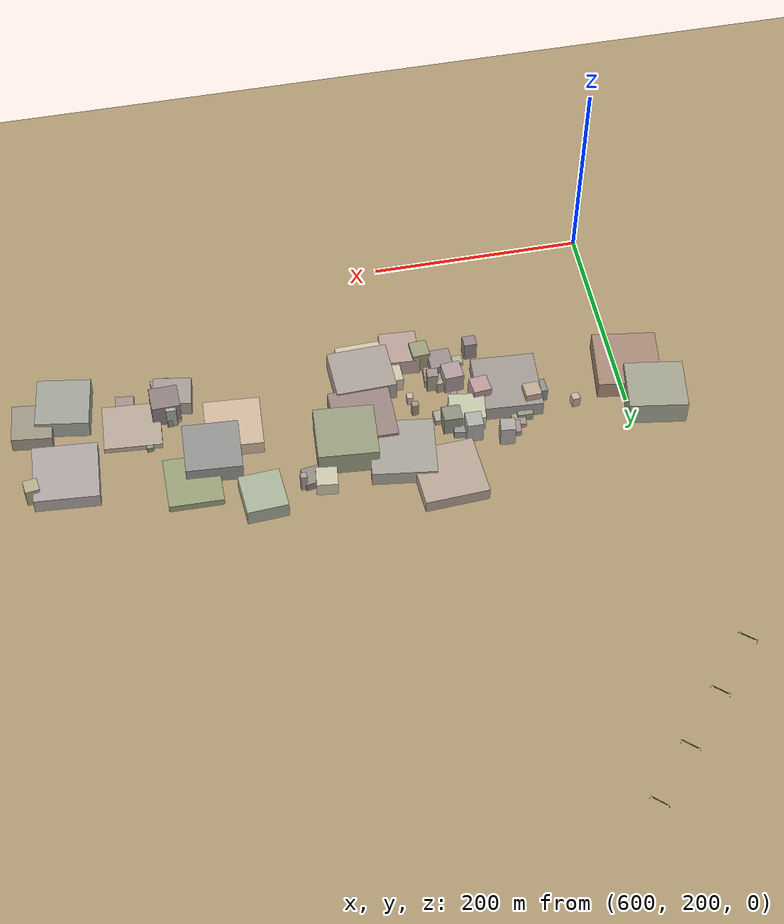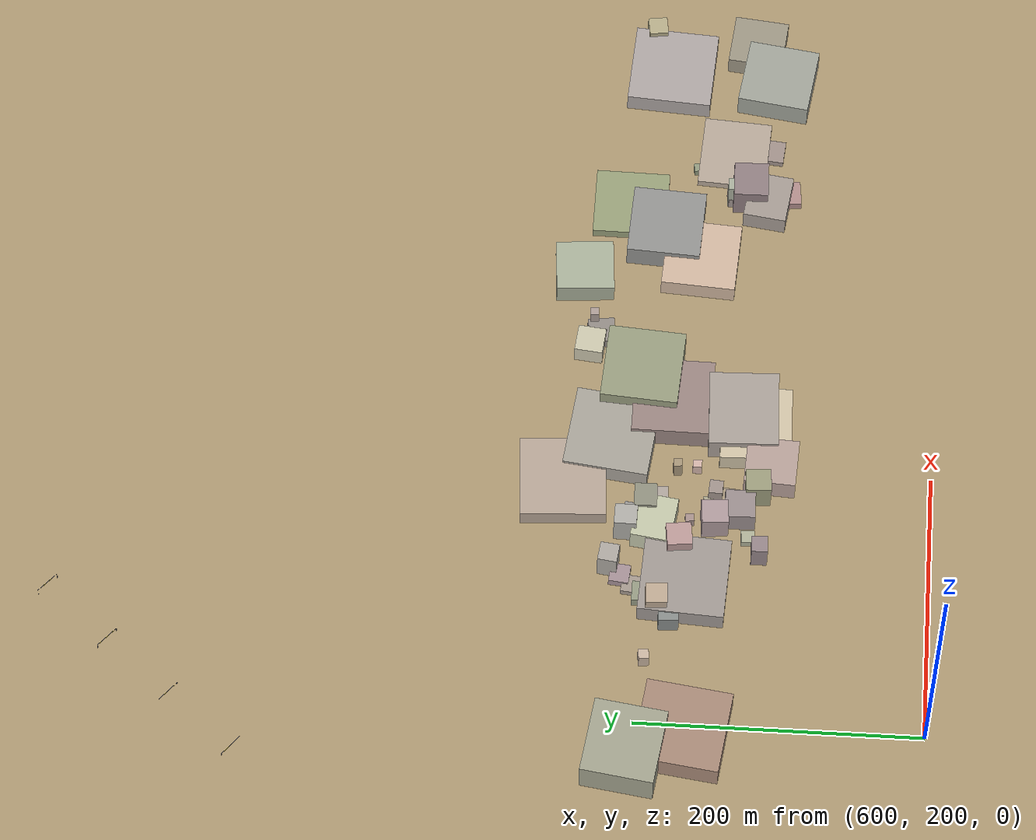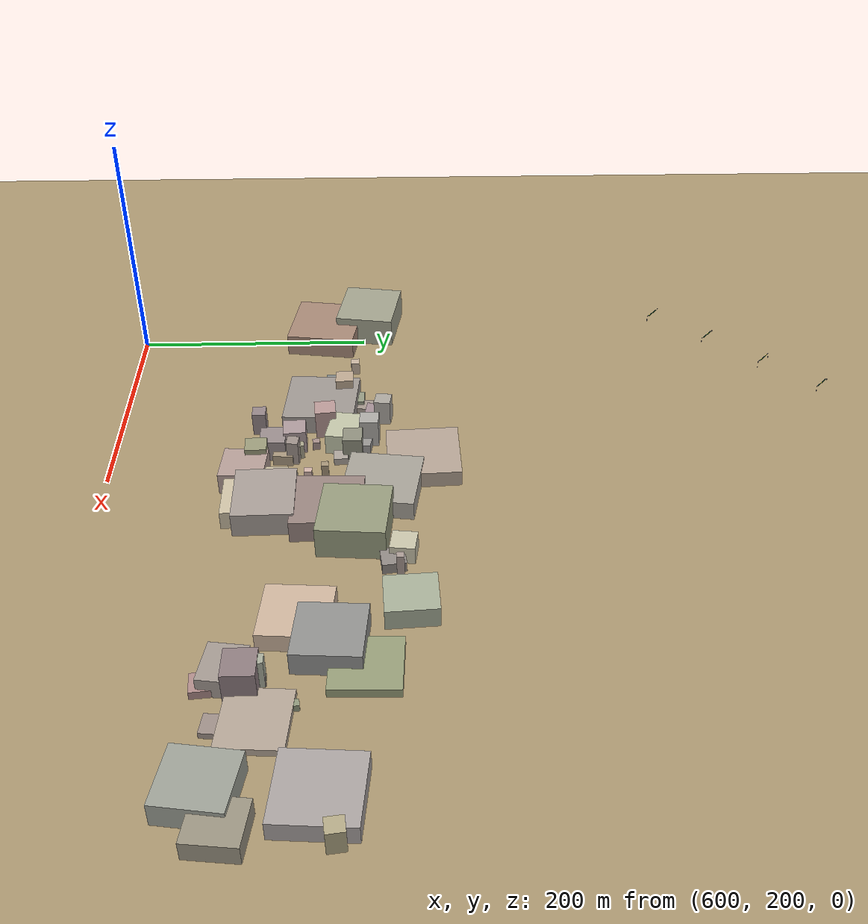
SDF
<sdf version="1.9">
 <world name="crossroad_world">
  <model name="ground_plane">
   <static>true</static>
   <pose>0 0 -0.05 0 0 0</pose>
   <link name="link">
    <collision name="collision">
     <geometry><plane><normal>0 0 1</normal><size>10000 10000</size></plane></geometry>
    </collision>
    <visual name="visual">
     <geometry><plane><normal>0 0 1</normal><size>15000 15000</size></plane></geometry>
     <material><ambient>0.68 0.60 0.45 1</ambient><diffuse>0.68 0.60 0.45 1</diffuse></material>
    </visual>
   </link>
  </model>
  <model name="gantry_77">
   <static>true</static>
   <pose>564.107 672.157 0 0 0 2.456</pose>
   <link name="link">
    <visual name="post_l">
     <pose>-8.900 0 2.925 0 0 0</pose>
     <geometry><cylinder><radius>0.1</radius><length>5.85</length></cylinder></geometry>
     <material><ambient>0.30 0.30 0.35 1</ambient><diffuse>0.30 0.30 0.35 1</diffuse></material>
    </visual>
    <visual name="post_r">
     <pose>8.900 0 2.925 0 0 0</pose>
     <geometry><cylinder><radius>0.1</radius><length>5.85</length></cylinder></geometry>
     <material><ambient>0.30 0.30 0.35 1</ambient><diffuse>0.30 0.30 0.35 1</diffuse></material>
    </visual>
    <visual name="beam">
     <pose>0 0 6.000 0 0 0</pose>
     <geometry><box><size>17.800 0.22 0.22</size></box></geometry>
     <material><ambient>0.30 0.30 0.35 1</ambient><diffuse>0.30 0.30 0.35 1</diffuse></material>
    </visual>
    <visual name="sign_border">
     <pose>0 -0.14 5.450 0 0 0</pose>
     <geometry><box><size>12.896 0.04 0.92</size></box></geometry>
     <material><ambient>0.90 0.85 0.10 1</ambient><diffuse>0.90 0.85 0.10 1</diffuse></material>
    </visual>
    <visual name="sign_panel">
     <pose>0 -0.15 5.450 0 0 0</pose>
     <geometry><box><size>12.816 0.05 0.86</size></box></geometry>
     <material><ambient>0.05 0.38 0.10 1</ambient><diffuse>0.05 0.38 0.10 1</diffuse></material>
    </visual>
    <collision name="col_post_l">
     <pose>-8.900 0 2.925 0 0 0</pose>
     <geometry><cylinder><radius>0.1</radius><length>5.85</length></cylinder></geometry>
    </collision>
    <collision name="col_post_r">
     <pose>8.900 0 2.925 0 0 0</pose>
     <geometry><cylinder><radius>0.1</radius><length>5.85</length></cylinder></geometry>
    </collision>
    <collision name="col_beam">
     <pose>0 0 6.000 0 0 0</pose>
     <geometry><box><size>17.800 0.22 0.22</size></box></geometry>
    </collision>
   </link>
  </model>
  <model name="gantry_78">
   <static>true</static>
   <pose>602.330 718.373 0 0 0 2.440</pose>
   <link name="link">
    <visual name="post_l">
     <pose>-8.900 0 2.925 0 0 0</pose>
     <geometry><cylinder><radius>0.1</radius><length>5.85</length></cylinder></geometry>
     <material><ambient>0.30 0.30 0.35 1</ambient><diffuse>0.30 0.30 0.35 1</diffuse></material>
    </visual>
    <visual name="post_r">
     <pose>8.900 0 2.925 0 0 0</pose>
     <geometry><cylinder><radius>0.1</radius><length>5.85</length></cylinder></geometry>
     <material><ambient>0.30 0.30 0.35 1</ambient><diffuse>0.30 0.30 0.35 1</diffuse></material>
    </visual>
    <visual name="beam">
     <pose>0 0 6.000 0 0 0</pose>
     <geometry><box><size>17.800 0.22 0.22</size></box></geometry>
     <material><ambient>0.30 0.30 0.35 1</ambient><diffuse>0.30 0.30 0.35 1</diffuse></material>
    </visual>
    <visual name="sign_border">
     <pose>0 -0.14 5.450 0 0 0</pose>
     <geometry><box><size>12.896 0.04 0.92</size></box></geometry>
     <material><ambient>0.90 0.85 0.10 1</ambient><diffuse>0.90 0.85 0.10 1</diffuse></material>
    </visual>
    <visual name="sign_panel">
     <pose>0 -0.15 5.450 0 0 0</pose>
     <geometry><box><size>12.816 0.05 0.86</size></box></geometry>
     <material><ambient>0.05 0.38 0.10 1</ambient><diffuse>0.05 0.38 0.10 1</diffuse></material>
    </visual>
    <collision name="col_post_l">
     <pose>-8.900 0 2.925 0 0 0</pose>
     <geometry><cylinder><radius>0.1</radius><length>5.85</length></cylinder></geometry>
    </collision>
    <collision name="col_post_r">
     <pose>8.900 0 2.925 0 0 0</pose>
     <geometry><cylinder><radius>0.1</radius><length>5.85</length></cylinder></geometry>
    </collision>
    <collision name="col_beam">
     <pose>0 0 6.000 0 0 0</pose>
     <geometry><box><size>17.800 0.22 0.22</size></box></geometry>
    </collision>
   </link>
  </model>
  <model name="gantry_79">
   <static>true</static>
   <pose>641.309 763.953 0 0 0 2.426</pose>
   <link name="link">
    <visual name="post_l">
     <pose>-8.900 0 2.925 0 0 0</pose>
     <geometry><cylinder><radius>0.1</radius><length>5.85</length></cylinder></geometry>
     <material><ambient>0.30 0.30 0.35 1</ambient><diffuse>0.30 0.30 0.35 1</diffuse></material>
    </visual>
    <visual name="post_r">
     <pose>8.900 0 2.925 0 0 0</pose>
     <geometry><cylinder><radius>0.1</radius><length>5.85</length></cylinder></geometry>
     <material><ambient>0.30 0.30 0.35 1</ambient><diffuse>0.30 0.30 0.35 1</diffuse></material>
    </visual>
    <visual name="beam">
     <pose>0 0 6.000 0 0 0</pose>
     <geometry><box><size>17.800 0.22 0.22</size></box></geometry>
     <material><ambient>0.30 0.30 0.35 1</ambient><diffuse>0.30 0.30 0.35 1</diffuse></material>
    </visual>
    <visual name="sign_border">
     <pose>0 -0.14 5.450 0 0 0</pose>
     <geometry><box><size>12.896 0.04 0.92</size></box></geometry>
     <material><ambient>0.90 0.85 0.10 1</ambient><diffuse>0.90 0.85 0.10 1</diffuse></material>
    </visual>
    <visual name="sign_panel">
     <pose>0 -0.15 5.450 0 0 0</pose>
     <geometry><box><size>12.816 0.05 0.86</size></box></geometry>
     <material><ambient>0.05 0.38 0.10 1</ambient><diffuse>0.05 0.38 0.10 1</diffuse></material>
    </visual>
    <collision name="col_post_l">
     <pose>-8.900 0 2.925 0 0 0</pose>
     <geometry><cylinder><radius>0.1</radius><length>5.85</length></cylinder></geometry>
    </collision>
    <collision name="col_post_r">
     <pose>8.900 0 2.925 0 0 0</pose>
     <geometry><cylinder><radius>0.1</radius><length>5.85</length></cylinder></geometry>
    </collision>
    <collision name="col_beam">
     <pose>0 0 6.000 0 0 0</pose>
     <geometry><box><size>17.800 0.22 0.22</size></box></geometry>
    </collision>
   </link>
  </model>
  <model name="gantry_80">
   <static>true</static>
   <pose>680.913 809.001 0 0 0 2.415</pose>
   <link name="link">
    <visual name="post_l">
     <pose>-8.900 0 2.925 0 0 0</pose>
     <geometry><cylinder><radius>0.1</radius><length>5.85</length></cylinder></geometry>
     <material><ambient>0.30 0.30 0.35 1</ambient><diffuse>0.30 0.30 0.35 1</diffuse></material>
    </visual>
    <visual name="post_r">
     <pose>8.900 0 2.925 0 0 0</pose>
     <geometry><cylinder><radius>0.1</radius><length>5.85</length></cylinder></geometry>
     <material><ambient>0.30 0.30 0.35 1</ambient><diffuse>0.30 0.30 0.35 1</diffuse></material>
    </visual>
    <visual name="beam">
     <pose>0 0 6.000 0 0 0</pose>
     <geometry><box><size>17.800 0.22 0.22</size></box></geometry>
     <material><ambient>0.30 0.30 0.35 1</ambient><diffuse>0.30 0.30 0.35 1</diffuse></material>
    </visual>
    <visual name="sign_border">
     <pose>0 -0.14 5.450 0 0 0</pose>
     <geometry><box><size>12.896 0.04 0.92</size></box></geometry>
     <material><ambient>0.90 0.85 0.10 1</ambient><diffuse>0.90 0.85 0.10 1</diffuse></material>
    </visual>
    <visual name="sign_panel">
     <pose>0 -0.15 5.450 0 0 0</pose>
     <geometry><box><size>12.816 0.05 0.86</size></box></geometry>
     <material><ambient>0.05 0.38 0.10 1</ambient><diffuse>0.05 0.38 0.10 1</diffuse></material>
    </visual>
    <collision name="col_post_l">
     <pose>-8.900 0 2.925 0 0 0</pose>
     <geometry><cylinder><radius>0.1</radius><length>5.85</length></cylinder></geometry>
    </collision>
    <collision name="col_post_r">
     <pose>8.900 0 2.925 0 0 0</pose>
     <geometry><cylinder><radius>0.1</radius><length>5.85</length></cylinder></geometry>
    </collision>
    <collision name="col_beam">
     <pose>0 0 6.000 0 0 0</pose>
     <geometry><box><size>17.800 0.22 0.22</size></box></geometry>
    </collision>
   </link>
  </model>
  <model name="building_0">
   <static>true</static>
   <pose>1021.144 346.003 4.849 0 0 0.138</pose>
   <link name="link">
    <visual name="body">
     <geometry><box><size>9.32 9.34 9.70</size></box></geometry>
     <material><ambient>0.66 0.61 0.59 1</ambient><diffuse>0.66 0.61 0.59 1</diffuse></material>
    </visual>
    <collision name="col"><geometry><box><size>9.32 9.34 9.70</size></box></geometry></collision>
   </link>
  </model>
  <model name="building_1">
   <static>true</static>
   <pose>1021.144 346.003 11.898 0 0 0.011</pose>
   <link name="link">
    <visual name="body">
     <geometry><box><size>9.32 9.34 23.80</size></box></geometry>
     <material><ambient>0.67 0.69 0.62 1</ambient><diffuse>0.67 0.69 0.62 1</diffuse></material>
    </visual>
    <collision name="col"><geometry><box><size>9.32 9.34 23.80</size></box></geometry></collision>
   </link>
  </model>
  <model name="building_7">
   <static>true</static>
   <pose>1058.413 346.992 2.939 0 0 -0.067</pose>
   <link name="link">
    <visual name="body">
     <geometry><box><size>53.76 48.44 5.88</size></box></geometry>
     <material><ambient>0.72 0.66 0.60 1</ambient><diffuse>0.72 0.66 0.60 1</diffuse></material>
    </visual>
    <collision name="col"><geometry><box><size>53.76 48.44 5.88</size></box></geometry></collision>
   </link>
  </model>
  <model name="building_8">
   <static>true</static>
   <pose>1118.100 317.681 9.674 0 0 -0.148</pose>
   <link name="link">
    <visual name="body">
     <geometry><box><size>49.93 50.81 19.35</size></box></geometry>
     <material><ambient>0.63 0.64 0.60 1</ambient><diffuse>0.63 0.64 0.60 1</diffuse></material>
    </visual>
    <collision name="col"><geometry><box><size>49.93 50.81 19.35</size></box></geometry></collision>
   </link>
  </model>
  <model name="building_9">
   <static>true</static>
   <pose>1156.021 407.020 9.808 0 0 0.134</pose>
   <link name="link">
    <visual name="body">
     <geometry><box><size>13.26 13.51 19.62</size></box></geometry>
     <material><ambient>0.72 0.68 0.54 1</ambient><diffuse>0.72 0.68 0.54 1</diffuse></material>
    </visual>
    <collision name="col"><geometry><box><size>13.26 13.51 19.62</size></box></geometry></collision>
   </link>
  </model>
  <model name="building_10">
   <static>true</static>
   <pose>1148.658 333.282 7.904 0 0 -0.112</pose>
   <link name="link">
    <visual name="body">
     <geometry><box><size>37.48 38.85 15.81</size></box></geometry>
     <material><ambient>0.62 0.59 0.52 1</ambient><diffuse>0.62 0.59 0.52 1</diffuse></material>
    </visual>
    <collision name="col"><geometry><box><size>37.48 38.85 15.81</size></box></geometry></collision>
   </link>
  </model>
  <model name="building_11">
   <static>true</static>
   <pose>1123.941 394.640 7.738 0 0 -0.071</pose>
   <link name="link">
    <visual name="body">
     <geometry><box><size>60.00 60.00 15.48</size></box></geometry>
     <material><ambient>0.68 0.65 0.64 1</ambient><diffuse>0.68 0.65 0.64 1</diffuse></material>
    </visual>
    <collision name="col"><geometry><box><size>60.00 60.00 15.48</size></box></geometry></collision>
   </link>
  </model>
  <model name="building_15">
   <static>true</static>
   <pose>1016.986 321.589 8.074 0 0 -0.143</pose>
   <link name="link">
    <visual name="body">
     <geometry><box><size>36.07 30.42 16.15</size></box></geometry>
     <material><ambient>0.65 0.61 0.58 1</ambient><diffuse>0.65 0.61 0.58 1</diffuse></material>
    </visual>
    <collision name="col"><geometry><box><size>36.07 30.42 16.15</size></box></geometry></collision>
   </link>
  </model>
  <model name="building_16">
   <static>true</static>
   <pose>1062.160 319.956 2.531 0 0 -0.101</pose>
   <link name="link">
    <visual name="body">
     <geometry><box><size>17.54 17.69 5.06</size></box></geometry>
     <material><ambient>0.63 0.57 0.54 1</ambient><diffuse>0.63 0.57 0.54 1</diffuse></material>
    </visual>
    <collision name="col"><geometry><box><size>17.54 17.69 5.06</size></box></geometry></collision>
   </link>
  </model>
  <model name="building_48">
   <static>true</static>
   <pose>757.737 367.236 3.574 0 0 0.089</pose>
   <link name="link">
    <visual name="body">
     <geometry><box><size>6.04 6.07 7.15</size></box></geometry>
     <material><ambient>0.66 0.57 0.55 1</ambient><diffuse>0.66 0.57 0.55 1</diffuse></material>
    </visual>
    <collision name="col"><geometry><box><size>6.04 6.07 7.15</size></box></geometry></collision>
   </link>
  </model>
  <model name="building_49">
   <static>true</static>
   <pose>775.511 388.972 3.079 0 0 0.056</pose>
   <link name="link">
    <visual name="body">
     <geometry><box><size>11.57 11.84 6.16</size></box></geometry>
     <material><ambient>0.69 0.65 0.62 1</ambient><diffuse>0.69 0.65 0.62 1</diffuse></material>
    </visual>
    <collision name="col"><geometry><box><size>11.57 11.84 6.16</size></box></geometry></collision>
   </link>
  </model>
  <model name="building_50">
   <static>true</static>
   <pose>757.240 405.294 4.094 0 0 -0.149</pose>
   <link name="link">
    <visual name="body">
     <geometry><box><size>17.54 17.57 8.19</size></box></geometry>
     <material><ambient>0.60 0.59 0.58 1</ambient><diffuse>0.60 0.59 0.58 1</diffuse></material>
    </visual>
    <collision name="col"><geometry><box><size>17.54 17.57 8.19</size></box></geometry></collision>
   </link>
  </model>
  <model name="building_51">
   <static>true</static>
   <pose>748.805 411.810 12.039 0 0 -0.026</pose>
   <link name="link">
    <visual name="body">
     <geometry><box><size>15.20 15.77 24.08</size></box></geometry>
     <material><ambient>0.69 0.68 0.66 1</ambient><diffuse>0.69 0.68 0.66 1</diffuse></material>
    </visual>
    <collision name="col"><geometry><box><size>15.20 15.77 24.08</size></box></geometry></collision>
   </link>
  </model>
  <model name="building_52">
   <static>true</static>
   <pose>766.768 398.683 10.384 0 0 0.002</pose>
   <link name="link">
    <visual name="body">
     <geometry><box><size>17.38 15.96 20.77</size></box></geometry>
     <material><ambient>0.57 0.57 0.50 1</ambient><diffuse>0.57 0.57 0.50 1</diffuse></material>
    </visual>
    <collision name="col"><geometry><box><size>17.38 15.96 20.77</size></box></geometry></collision>
   </link>
  </model>
  <model name="building_53">
   <static>true</static>
   <pose>750.925 391.828 9.101 0 0 -0.147</pose>
   <link name="link">
    <visual name="body">
     <geometry><box><size>33.54 28.16 18.20</size></box></geometry>
     <material><ambient>0.77 0.78 0.67 1</ambient><diffuse>0.77 0.78 0.67 1</diffuse></material>
    </visual>
    <collision name="col"><geometry><box><size>33.54 28.16 18.20</size></box></geometry></collision>
   </link>
  </model>
  <model name="building_54">
   <static>true</static>
   <pose>781.610 320.754 11.616 0 0 0.054</pose>
   <link name="link">
    <visual name="body">
     <geometry><box><size>16.38 17.56 23.23</size></box></geometry>
     <material><ambient>0.62 0.62 0.49 1</ambient><diffuse>0.62 0.62 0.49 1</diffuse></material>
    </visual>
    <collision name="col"><geometry><box><size>16.38 17.56 23.23</size></box></geometry></collision>
   </link>
  </model>
  <model name="building_55">
   <static>true</static>
   <pose>799.493 312.066 9.262 0 0 -0.057</pose>
   <link name="link">
    <visual name="body">
     <geometry><box><size>35.28 36.13 18.52</size></box></geometry>
     <material><ambient>0.72 0.63 0.60 1</ambient><diffuse>0.72 0.63 0.60 1</diffuse></material>
    </visual>
    <collision name="col"><geometry><box><size>35.28 36.13 18.52</size></box></geometry></collision>
   </link>
  </model>
  <model name="building_57">
   <static>true</static>
   <pose>839.318 332.947 10.293 0 0 0.029</pose>
   <link name="link">
    <visual name="body">
     <geometry><box><size>56.78 48.95 20.59</size></box></geometry>
     <material><ambient>0.67 0.63 0.60 1</ambient><diffuse>0.67 0.63 0.60 1</diffuse></material>
    </visual>
    <collision name="col"><geometry><box><size>56.78 48.95 20.59</size></box></geometry></collision>
   </link>
  </model>
  <model name="building_58">
   <static>true</static>
   <pose>847.411 382.824 9.511 0 0 -0.013</pose>
   <link name="link">
    <visual name="body">
     <geometry><box><size>57.48 56.18 19.02</size></box></geometry>
     <material><ambient>0.61 0.53 0.51 1</ambient><diffuse>0.61 0.53 0.51 1</diffuse></material>
    </visual>
    <collision name="col"><geometry><box><size>57.48 56.18 19.02</size></box></geometry></collision>
   </link>
  </model>
  <model name="building_61">
   <static>true</static>
   <pose>830.525 323.802 7.745 0 0 0.022</pose>
   <link name="link">
    <visual name="body">
     <geometry><box><size>56.00 50.18 15.49</size></box></geometry>
     <material><ambient>0.82 0.77 0.66 1</ambient><diffuse>0.82 0.77 0.66 1</diffuse></material>
    </visual>
    <collision name="col"><geometry><box><size>56.00 50.18 15.49</size></box></geometry></collision>
   </link>
  </model>
  <model name="building_62">
   <static>true</static>
   <pose>867.393 405.168 13.359 0 0 -0.076</pose>
   <link name="link">
    <visual name="body">
     <geometry><box><size>56.09 54.53 26.72</size></box></geometry>
     <material><ambient>0.60 0.62 0.50 1</ambient><diffuse>0.60 0.62 0.50 1</diffuse></material>
    </visual>
    <collision name="col"><geometry><box><size>56.09 54.53 26.72</size></box></geometry></collision>
   </link>
  </model>
  <model name="building_63">
   <static>true</static>
   <pose>781.450 457.162 6.837 0 0 0.058</pose>
   <link name="link">
    <visual name="body">
     <geometry><box><size>60.00 60.00 13.67</size></box></geometry>
     <material><ambient>0.72 0.65 0.59 1</ambient><diffuse>0.72 0.65 0.59 1</diffuse></material>
    </visual>
    <collision name="col"><geometry><box><size>60.00 60.00 13.67</size></box></geometry></collision>
   </link>
  </model>
  <model name="building_64">
   <static>true</static>
   <pose>772.474 342.172 4.602 0 0 -0.085</pose>
   <link name="link">
    <visual name="body">
     <geometry><box><size>17.36 16.69 9.20</size></box></geometry>
     <material><ambient>0.67 0.60 0.50 1</ambient><diffuse>0.67 0.60 0.50 1</diffuse></material>
    </visual>
    <collision name="col"><geometry><box><size>17.36 16.69 9.20</size></box></geometry></collision>
   </link>
  </model>
  <model name="building_65">
   <static>true</static>
   <pose>756.201 350.079 10.587 0 0 0.074</pose>
   <link name="link">
    <visual name="body">
     <geometry><box><size>17.93 18.46 21.17</size></box></geometry>
     <material><ambient>0.69 0.61 0.62 1</ambient><diffuse>0.69 0.61 0.62 1</diffuse></material>
    </visual>
    <collision name="col"><geometry><box><size>17.93 18.46 21.17</size></box></geometry></collision>
   </link>
  </model>
  <model name="building_66">
   <static>true</static>
   <pose>764.348 332.610 9.467 0 0 0.023</pose>
   <link name="link">
    <visual name="body">
     <geometry><box><size>21.06 21.07 18.93</size></box></geometry>
     <material><ambient>0.61 0.56 0.56 1</ambient><diffuse>0.61 0.56 0.56 1</diffuse></material>
    </visual>
    <collision name="col"><geometry><box><size>21.06 21.07 18.93</size></box></geometry></collision>
   </link>
  </model>
  <model name="building_67">
   <static>true</static>
   <pose>951.466 450.241 8.609 0 0 0.067</pose>
   <link name="link">
    <visual name="body">
     <geometry><box><size>38.36 40.91 17.22</size></box></geometry>
     <material><ambient>0.67 0.70 0.61 1</ambient><diffuse>0.67 0.70 0.61 1</diffuse></material>
    </visual>
    <collision name="col"><geometry><box><size>38.36 40.91 17.22</size></box></geometry></collision>
   </link>
  </model>
  <model name="building_68">
   <static>true</static>
   <pose>903.443 435.528 4.489 0 0 0.143</pose>
   <link name="link">
    <visual name="body">
     <geometry><box><size>18.61 18.76 8.98</size></box></geometry>
     <material><ambient>0.58 0.55 0.53 1</ambient><diffuse>0.58 0.55 0.53 1</diffuse></material>
    </visual>
    <collision name="col"><geometry><box><size>18.61 18.76 8.98</size></box></geometry></collision>
   </link>
  </model>
  <model name="building_69">
   <static>true</static>
   <pose>892.069 443.430 7.546 0 0 -0.112</pose>
   <link name="link">
    <visual name="body">
     <geometry><box><size>19.69 19.84 15.09</size></box></geometry>
     <material><ambient>0.80 0.78 0.68 1</ambient><diffuse>0.80 0.78 0.68 1</diffuse></material>
    </visual>
    <collision name="col"><geometry><box><size>19.69 19.84 15.09</size></box></geometry></collision>
   </link>
  </model>
  <model name="building_70">
   <static>true</static>
   <pose>1045.074 372.687 2.766 0 0 0.148</pose>
   <link name="link">
    <visual name="body">
     <geometry><box><size>6.11 6.16 5.53</size></box></geometry>
     <material><ambient>0.58 0.61 0.50 1</ambient><diffuse>0.58 0.61 0.50 1</diffuse></material>
    </visual>
    <collision name="col"><geometry><box><size>6.11 6.16 5.53</size></box></geometry></collision>
   </link>
  </model>
  <model name="building_72">
   <static>true</static>
   <pose>1025.997 306.694 3.395 0 0 0.096</pose>
   <link name="link">
    <visual name="body">
     <geometry><box><size>18.05 16.66 6.79</size></box></geometry>
     <material><ambient>0.70 0.56 0.55 1</ambient><diffuse>0.70 0.56 0.55 1</diffuse></material>
    </visual>
    <collision name="col"><geometry><box><size>18.05 16.66 6.79</size></box></geometry></collision>
   </link>
  </model>
  <model name="building_73">
   <static>true</static>
   <pose>769.082 354.808 6.390 0 0 0.145</pose>
   <link name="link">
    <visual name="body">
     <geometry><box><size>6.12 6.67 12.78</size></box></geometry>
     <material><ambient>0.68 0.66 0.56 1</ambient><diffuse>0.68 0.66 0.56 1</diffuse></material>
    </visual>
    <collision name="col"><geometry><box><size>6.12 6.67 12.78</size></box></geometry></collision>
   </link>
  </model>
  <model name="building_74">
   <static>true</static>
   <pose>775.148 350.047 10.810 0 0 -0.076</pose>
   <link name="link">
    <visual name="body">
     <geometry><box><size>10.18 9.65 21.62</size></box></geometry>
     <material><ambient>0.63 0.58 0.55 1</ambient><diffuse>0.63 0.58 0.55 1</diffuse></material>
    </visual>
    <collision name="col"><geometry><box><size>10.18 9.65 21.62</size></box></geometry></collision>
   </link>
  </model>
  <model name="building_77">
   <static>true</static>
   <pose>966.343 367.622 7.566 0 0 -0.068</pose>
   <link name="link">
    <visual name="body">
     <geometry><box><size>52.53 52.57 15.13</size></box></geometry>
     <material><ambient>0.82 0.72 0.63 1</ambient><diffuse>0.82 0.72 0.63 1</diffuse></material>
    </visual>
    <collision name="col"><geometry><box><size>52.53 52.57 15.13</size></box></geometry></collision>
   </link>
  </model>
  <model name="building_78">
   <static>true</static>
   <pose>1011.238 419.775 3.822 0 0 -0.017</pose>
   <link name="link">
    <visual name="body">
     <geometry><box><size>50.56 52.61 7.64</size></box></geometry>
     <material><ambient>0.60 0.63 0.48 1</ambient><diffuse>0.60 0.63 0.48 1</diffuse></material>
    </visual>
    <collision name="col"><geometry><box><size>50.56 52.61 7.64</size></box></geometry></collision>
   </link>
  </model>
  <model name="building_79">
   <static>true</static>
   <pose>913.064 441.366 9.399 0 0 0.059</pose>
   <link name="link">
    <visual name="body">
     <geometry><box><size>5.75 5.90 18.80</size></box></geometry>
     <material><ambient>0.68 0.62 0.59 1</ambient><diffuse>0.68 0.62 0.59 1</diffuse></material>
    </visual>
    <collision name="col"><geometry><box><size>5.75 5.90 18.80</size></box></geometry></collision>
   </link>
  </model>
  <model name="building_94">
   <static>true</static>
   <pose>591.233 365.720 9.456 0 0 -0.139</pose>
   <link name="link">
    <visual name="body">
     <geometry><box><size>60.00 60.00 18.91</size></box></geometry>
     <material><ambient>0.66 0.54 0.47 1</ambient><diffuse>0.66 0.54 0.47 1</diffuse></material>
    </visual>
    <collision name="col"><geometry><box><size>60.00 60.00 18.91</size></box></geometry></collision>
   </link>
  </model>
  <model name="building_96">
   <static>true</static>
   <pose>722.900 357.111 6.408 0 0 -0.057</pose>
   <link name="link">
    <visual name="body">
     <geometry><box><size>10.71 10.28 12.82</size></box></geometry>
     <material><ambient>0.67 0.55 0.51 1</ambient><diffuse>0.67 0.55 0.51 1</diffuse></material>
    </visual>
    <collision name="col"><geometry><box><size>10.71 10.28 12.82</size></box></geometry></collision>
   </link>
  </model>
  <model name="building_97">
   <static>true</static>
   <pose>734.913 374.175 12.678 0 0 0.111</pose>
   <link name="link">
    <visual name="body">
     <geometry><box><size>16.94 17.53 25.36</size></box></geometry>
     <material><ambient>0.74 0.61 0.60 1</ambient><diffuse>0.74 0.61 0.60 1</diffuse></material>
    </visual>
    <collision name="col"><geometry><box><size>16.94 17.53 25.36</size></box></geometry></collision>
   </link>
  </model>
  <model name="building_98">
   <static>true</static>
   <pose>707.914 369.119 8.146 0 0 -0.061</pose>
   <link name="link">
    <visual name="body">
     <geometry><box><size>59.90 60.00 16.29</size></box></geometry>
     <material><ambient>0.63 0.60 0.58 1</ambient><diffuse>0.63 0.60 0.58 1</diffuse></material>
    </visual>
    <collision name="col"><geometry><box><size>59.90 60.00 16.29</size></box></geometry></collision>
   </link>
  </model>
  <model name="building_99">
   <static>true</static>
   <pose>745.890 326.364 2.549 0 0 0.044</pose>
   <link name="link">
    <visual name="body">
     <geometry><box><size>9.42 9.30 5.10</size></box></geometry>
     <material><ambient>0.69 0.70 0.60 1</ambient><diffuse>0.69 0.70 0.60 1</diffuse></material>
    </visual>
    <collision name="col"><geometry><box><size>9.42 9.30 5.10</size></box></geometry></collision>
   </link>
  </model>
  <model name="building_100">
   <static>true</static>
   <pose>732.631 318.182 10.260 0 0 0.021</pose>
   <link name="link">
    <visual name="body">
     <geometry><box><size>11.99 11.20 20.52</size></box></geometry>
     <material><ambient>0.59 0.53 0.54 1</ambient><diffuse>0.59 0.53 0.54 1</diffuse></material>
    </visual>
    <collision name="col"><geometry><box><size>11.99 11.20 20.52</size></box></geometry></collision>
   </link>
  </model>
  <model name="building_101">
   <static>true</static>
   <pose>799.206 363.623 4.771 0 0 -0.000</pose>
   <link name="link">
    <visual name="body">
     <geometry><box><size>5.66 6.30 9.54</size></box></geometry>
     <material><ambient>0.83 0.71 0.67 1</ambient><diffuse>0.83 0.71 0.67 1</diffuse></material>
    </visual>
    <collision name="col"><geometry><box><size>5.66 6.30 9.54</size></box></geometry></collision>
   </link>
  </model>
  <model name="building_102">
   <static>true</static>
   <pose>797.106 377.346 7.064 0 0 0.096</pose>
   <link name="link">
    <visual name="body">
     <geometry><box><size>6.06 5.82 14.13</size></box></geometry>
     <material><ambient>0.66 0.59 0.48 1</ambient><diffuse>0.66 0.59 0.48 1</diffuse></material>
    </visual>
    <collision name="col"><geometry><box><size>6.06 5.82 14.13</size></box></geometry></collision>
   </link>
  </model>
  <model name="building_103">
   <static>true</static>
   <pose>719.322 422.280 11.119 0 0 -0.132</pose>
   <link name="link">
    <visual name="body">
     <geometry><box><size>13.68 13.55 22.24</size></box></geometry>
     <material><ambient>0.68 0.66 0.63 1</ambient><diffuse>0.68 0.66 0.63 1</diffuse></material>
    </visual>
    <collision name="col"><geometry><box><size>13.68 13.55 22.24</size></box></geometry></collision>
   </link>
  </model>
  <model name="building_104">
   <static>true</static>
   <pose>711.528 413.933 3.256 0 0 -0.115</pose>
   <link name="link">
    <visual name="body">
     <geometry><box><size>13.96 13.92 6.51</size></box></geometry>
     <material><ambient>0.65 0.57 0.59 1</ambient><diffuse>0.65 0.57 0.59 1</diffuse></material>
    </visual>
    <collision name="col"><geometry><box><size>13.96 13.92 6.51</size></box></geometry></collision>
   </link>
  </model>
  <model name="building_105">
   <static>true</static>
   <pose>704.343 405.955 2.511 0 0 -0.106</pose>
   <link name="link">
    <visual name="body">
     <geometry><box><size>12.96 12.74 5.02</size></box></geometry>
     <material><ambient>0.65 0.60 0.56 1</ambient><diffuse>0.65 0.60 0.56 1</diffuse></material>
    </visual>
    <collision name="col"><geometry><box><size>12.96 12.74 5.02</size></box></geometry></collision>
   </link>
  </model>
  <model name="building_106">
   <static>true</static>
   <pose>697.502 397.730 4.198 0 0 -0.012</pose>
   <link name="link">
    <visual name="body">
     <geometry><box><size>14.71 14.57 8.40</size></box></geometry>
     <material><ambient>0.59 0.61 0.52 1</ambient><diffuse>0.59 0.61 0.52 1</diffuse></material>
    </visual>
    <collision name="col"><geometry><box><size>14.71 14.57 8.40</size></box></geometry></collision>
   </link>
  </model>
  <model name="building_107">
   <static>true</static>
   <pose>688.503 387.957 12.069 0 0 0.044</pose>
   <link name="link">
    <visual name="body">
     <geometry><box><size>14.98 14.86 24.14</size></box></geometry>
     <material><ambient>0.75 0.67 0.58 1</ambient><diffuse>0.75 0.67 0.58 1</diffuse></material>
    </visual>
    <collision name="col"><geometry><box><size>14.98 14.86 24.14</size></box></geometry></collision>
   </link>
  </model>
  <model name="building_108">
   <static>true</static>
   <pose>679.691 379.135 7.457 0 0 0.056</pose>
   <link name="link">
    <visual name="body">
     <geometry><box><size>14.23 14.07 14.91</size></box></geometry>
     <material><ambient>0.54 0.56 0.55 1</ambient><diffuse>0.54 0.56 0.55 1</diffuse></material>
    </visual>
    <collision name="col"><geometry><box><size>14.23 14.07 14.91</size></box></geometry></collision>
   </link>
  </model>
  <model name="building_109">
   <static>true</static>
   <pose>647.565 394.689 5.771 0 0 0.117</pose>
   <link name="link">
    <visual name="body">
     <geometry><box><size>7.29 7.23 11.54</size></box></geometry>
     <material><ambient>0.80 0.72 0.64 1</ambient><diffuse>0.80 0.72 0.64 1</diffuse></material>
    </visual>
    <collision name="col"><geometry><box><size>7.29 7.23 11.54</size></box></geometry></collision>
   </link>
  </model>
  <model name="building_649">
   <static>true</static>
   <pose>818.166 424.454 7.982 0 0 -0.128</pose>
   <link name="link">
    <visual name="body">
     <geometry><box><size>60.00 60.00 15.96</size></box></geometry>
     <material><ambient>0.66 0.64 0.60 1</ambient><diffuse>0.66 0.64 0.60 1</diffuse></material>
    </visual>
    <collision name="col"><geometry><box><size>60.00 60.00 15.96</size></box></geometry></collision>
   </link>
  </model>
  <model name="building_650">
   <static>true</static>
   <pose>989.617 393.577 9.733 0 0 -0.061</pose>
   <link name="link">
    <visual name="body">
     <geometry><box><size>52.17 51.99 19.47</size></box></geometry>
     <material><ambient>0.58 0.58 0.57 1</ambient><diffuse>0.58 0.58 0.57 1</diffuse></material>
    </visual>
    <collision name="col"><geometry><box><size>52.17 51.99 19.47</size></box></geometry></collision>
   </link>
  </model>
  <model name="building_663">
   <static>true</static>
   <pose>574.358 404.893 12.794 0 0 -0.148</pose>
   <link name="link">
    <visual name="body">
     <geometry><box><size>54.73 50.98 25.59</size></box></geometry>
     <material><ambient>0.64 0.64 0.56 1</ambient><diffuse>0.64 0.64 0.56 1</diffuse></material>
    </visual>
    <collision name="col"><geometry><box><size>54.73 50.98 25.59</size></box></geometry></collision>
   </link>
  </model>
  <model name="building_667">
   <static>true</static>
   <pose>1025.381 334.577 2.661 0 0 0.008</pose>
   <link name="link">
    <visual name="body">
     <geometry><box><size>26.54 24.51 5.32</size></box></geometry>
     <material><ambient>0.74 0.63 0.65 1</ambient><diffuse>0.74 0.63 0.65 1</diffuse></material>
    </visual>
    <collision name="col"><geometry><box><size>26.54 24.51 5.32</size></box></geometry></collision>
   </link>
  </model>
  <model name="building_668">
   <static>true</static>
   <pose>1025.381 334.577 12.596 0 0 0.011</pose>
   <link name="link">
    <visual name="body">
     <geometry><box><size>26.54 24.51 25.19</size></box></geometry>
     <material><ambient>0.57 0.50 0.51 1</ambient><diffuse>0.57 0.50 0.51 1</diffuse></material>
    </visual>
    <collision name="col"><geometry><box><size>26.54 24.51 25.19</size></box></geometry></collision>
   </link>
  </model>
 </world>
</sdf>
